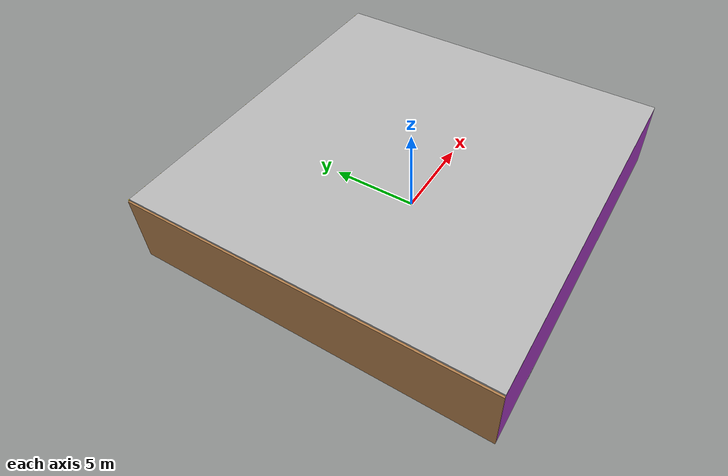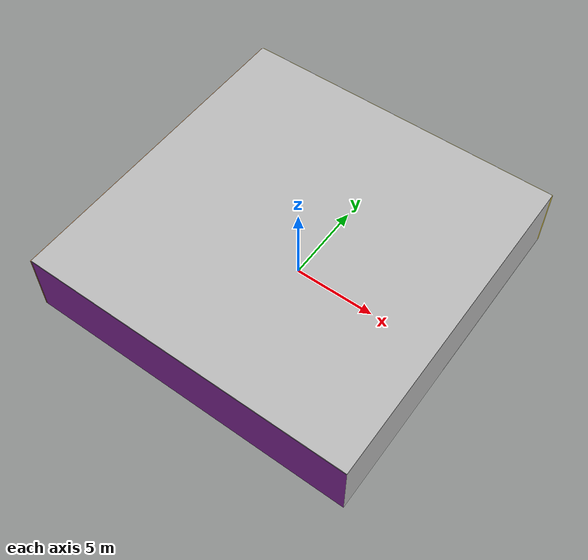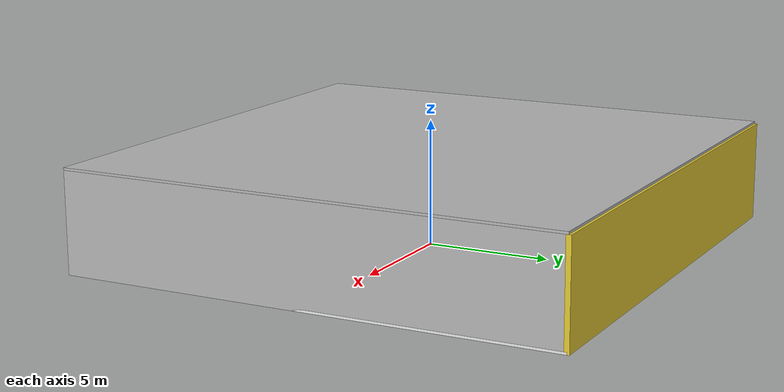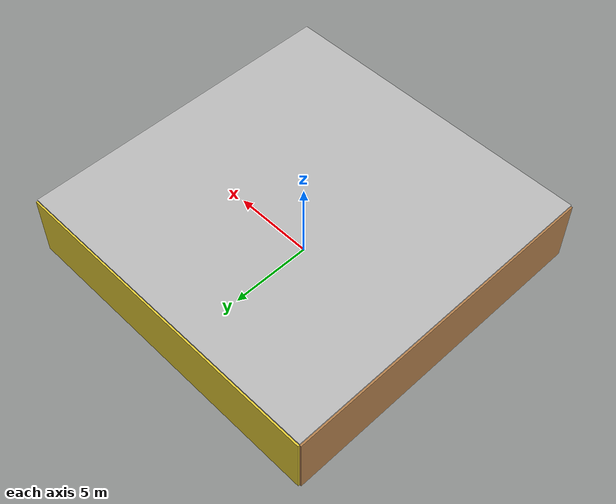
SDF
<sdf version="1.4">
 <world name="default">
  <physics type="ode">
   <max_step_size>0.001</max_step_size>
   <real_time_factor>1</real_time_factor>
   <real_time_update_rate>1000</real_time_update_rate>
   <gravity>0 0 -9.8</gravity>
  </physics>
  <scene><ambient>0.4 0.4 0.4 1</ambient><background>0.7 0.7 0.7 1</background><shadows>1</shadows></scene>
  <model name="Surrounding">
   <static>1</static>
   <link name="Ceiling">
    <collision name="Ceiling_Collision"><geometry><box><size>20 20 0.1</size></box></geometry></collision>
    <visual name="Ceiling_Visual">
     <geometry><box><size>20 20 0.1</size></box></geometry>
     <material>
      <script><uri>file://media/materials/scripts/gazebo.material</uri><name>Gazebo/Pioneer2Body</name></script>
     </material>
    </visual>
    <pose>0 0 4.05 0 0 0</pose>
   </link>
   <link name="Wall_South">
    <collision name="Wall_South_Collision">
     <geometry><box><size>20 0 4</size></box></geometry>
     <pose>0 0 2 0 -0 0</pose>
    </collision>
    <visual name="Wall_South_Visual">
     <pose>0 0 2 0 -0 0</pose>
     <geometry><box><size>20 0 4</size></box></geometry>
     <material>
      <script><uri>file://media/materials/scripts/gazebo.material</uri><name>Gazebo/Purple</name></script>
     </material>
    </visual>
    <velocity_decay><linear>0</linear><angular>0</angular></velocity_decay>
    <pose>0 -10 0 0 -0 0</pose>
   </link>
   <link name="Wall_East">
    <collision name="Wall_21_Collision">
     <geometry><box><size>20 0 4</size></box></geometry>
     <pose>0 0 2 0 -0 0</pose>
    </collision>
    <visual name="Wall_21_Visual">
     <pose>0 0 2 0 -0 0</pose>
     <geometry><box><size>20 0 4</size></box></geometry>
     <material>
      <script><uri>file://media/materials/scripts/gazebo.material</uri><name>Gazebo/PioneerBody</name></script>
     </material>
    </visual>
    <velocity_decay><linear>0</linear><angular>0</angular></velocity_decay>
    <pose>10 0 0 0 -0 1.5708</pose>
   </link>
   <link name="Wall_North">
    <collision name="Wall_22_Collision">
     <geometry><box><size>20 0.2 4</size></box></geometry>
     <pose>0 0 2 0 -0 0</pose>
    </collision>
    <visual name="Wall_22_Visual">
     <pose>0 0 2 0 -0 0</pose>
     <geometry><box><size>20 0.2 4</size></box></geometry>
     <material>
      <script><uri>file://media/materials/scripts/gazebo.material</uri><name>Gazebo/ZincYellow</name></script>
     </material>
    </visual>
    <velocity_decay><linear>0</linear><angular>0</angular></velocity_decay>
    <pose>0 10 0 0 -0 0</pose>
   </link>
   <link name="Wall_West">
    <collision name="Wall_23_Collision">
     <geometry><box><size>20 0.2 4</size></box></geometry>
     <pose>0 0 2 0 -0 0</pose>
    </collision>
    <visual name="Wall_23_Visual">
     <pose>0 0 2 0 -0 0</pose>
     <geometry><box><size>20 0.2 4</size></box></geometry>
     <material>
      <script><uri>file://media/materials/scripts/gazebo.material</uri><name>Gazebo/Wood</name></script>
     </material>
    </visual>
    <velocity_decay><linear>0</linear><angular>0</angular></velocity_decay>
    <pose>-10 0 0 0 0 -1.5708</pose>
   </link>
   <link name="Ground_link">
    <collision name="collision">
     <pose>0 0 .05 0 -0 0</pose>
     <geometry><box><size>20 20 0.1</size></box></geometry>
    </collision>
    <visual name="visual">
     <pose>0 0 .05 0 -0 0</pose>
     <geometry><box><size>20 20 0.1</size></box></geometry>
     <material>
      <script><uri>file://media/materials/scripts/gazebo.material</uri><name>Gazebo/WhiteGlow</name></script>
     </material>
    </visual>
   </link>
   <static>1</static>
  </model>
  <spherical_coordinates>
   <surface_model>EARTH_WGS84</surface_model>
   <latitude_deg>0</latitude_deg>
   <longitude_deg>0</longitude_deg>
   <elevation>0</elevation>
   <heading_deg>0</heading_deg>
  </spherical_coordinates>
  <light name="lightball_0" type="diffuse">
   <diffuse>0.8 0.8 0.8 1</diffuse>
   <specular>0.2 0.2 0.2 1</specular>
   <attenuation>
    <range>100</range>
    <constant>0.7</constant>
    <linear>0.01</linear>
    <quadratic>0.001</quadratic>
   </attenuation>
   <direction>-0.5 0.1 -0.9</direction>
   <pose>3.22458528569 -7.98584075087 3.2861071878 0 0 0</pose>
  </light>
  <light name="lightball_1" type="diffuse">
   <diffuse>0.8 0.8 0.8 1</diffuse>
   <specular>0.2 0.2 0.2 1</specular>
   <attenuation>
    <range>100</range>
    <constant>0.7</constant>
    <linear>0.01</linear>
    <quadratic>0.001</quadratic>
   </attenuation>
   <direction>-0.5 0.1 -0.9</direction>
   <pose>5.38126229309 -4.54196473744 0.882481976107 0 0 0</pose>
  </light>
  <light name="lightball_2" type="diffuse">
   <diffuse>0.8 0.8 0.8 1</diffuse>
   <specular>0.2 0.2 0.2 1</specular>
   <attenuation>
    <range>100</range>
    <constant>0.7</constant>
    <linear>0.01</linear>
    <quadratic>0.001</quadratic>
   </attenuation>
   <direction>-0.5 0.1 -0.9</direction>
   <pose>-0.271906311523 -3.14155742434 1.18280464888 0 0 0</pose>
  </light>
  <light name="lightball_3" type="diffuse">
   <diffuse>0.8 0.8 0.8 1</diffuse>
   <specular>0.2 0.2 0.2 1</specular>
   <attenuation>
    <range>100</range>
    <constant>0.7</constant>
    <linear>0.01</linear>
    <quadratic>0.001</quadratic>
   </attenuation>
   <direction>-0.5 0.1 -0.9</direction>
   <pose>-8.33420631931 -8.51920836303 0.982747817657 0 0 0</pose>
  </light>
  <light name="lightball_4" type="diffuse">
   <diffuse>0.8 0.8 0.8 1</diffuse>
   <specular>0.2 0.2 0.2 1</specular>
   <attenuation>
    <range>100</range>
    <constant>0.7</constant>
    <linear>0.01</linear>
    <quadratic>0.001</quadratic>
   </attenuation>
   <direction>-0.5 0.1 -0.9</direction>
   <pose>4.35502892506 6.87094183151 2.61020565892 0 0 0</pose>
  </light>
  <light name="lightball_5" type="diffuse">
   <diffuse>0.8 0.8 0.8 1</diffuse>
   <specular>0.2 0.2 0.2 1</specular>
   <attenuation>
    <range>100</range>
    <constant>0.7</constant>
    <linear>0.01</linear>
    <quadratic>0.001</quadratic>
   </attenuation>
   <direction>-0.5 0.1 -0.9</direction>
   <pose>-7.31970722972 5.75827343796 1.51626753435 0 0 0</pose>
  </light>
  <light name="lightball_6" type="diffuse">
   <diffuse>0.8 0.8 0.8 1</diffuse>
   <specular>0.2 0.2 0.2 1</specular>
   <attenuation>
    <range>100</range>
    <constant>0.7</constant>
    <linear>0.01</linear>
    <quadratic>0.001</quadratic>
   </attenuation>
   <direction>-0.5 0.1 -0.9</direction>
   <pose>9.42459454957 -3.57650648562 0.831728411327 0 0 0</pose>
  </light>
  <light name="lightball_7" type="diffuse">
   <diffuse>0.8 0.8 0.8 1</diffuse>
   <specular>0.2 0.2 0.2 1</specular>
   <attenuation>
    <range>100</range>
    <constant>0.7</constant>
    <linear>0.01</linear>
    <quadratic>0.001</quadratic>
   </attenuation>
   <direction>-0.5 0.1 -0.9</direction>
   <pose>-5.56998094001 8.31523178401 0.685217260856 0 0 0</pose>
  </light>
  <light name="lightball_8" type="diffuse">
   <diffuse>0.8 0.8 0.8 1</diffuse>
   <specular>0.2 0.2 0.2 1</specular>
   <attenuation>
    <range>100</range>
    <constant>0.7</constant>
    <linear>0.01</linear>
    <quadratic>0.001</quadratic>
   </attenuation>
   <direction>-0.5 0.1 -0.9</direction>
   <pose>1.59540016725 -9.97750011844 3.01887507177 0 0 0</pose>
  </light>
  <light name="lightball_9" type="diffuse">
   <diffuse>0.8 0.8 0.8 1</diffuse>
   <specular>0.2 0.2 0.2 1</specular>
   <attenuation>
    <range>100</range>
    <constant>0.7</constant>
    <linear>0.01</linear>
    <quadratic>0.001</quadratic>
   </attenuation>
   <direction>-0.5 0.1 -0.9</direction>
   <pose>-6.61550828236 -6.85816332487 1.42240824113 0 0 0</pose>
  </light>
  <include><uri>model://table</uri><pose>-0.750736885729 -0.908413305268 0 0 0 2.97648036313</pose></include>
  <include><uri>model://cabinet</uri><pose>-1.46650639546 3.76175175566 0 0 0 2.75701266567</pose></include>
  <include>
   <uri>model://construction_cone</uri>
   <pose>1.30166322463 -5.14863004506 0 0 0 1.59100218074</pose>
  </include>
  <include>
   <uri>model://textured_shapes</uri>
   <pose>4.78224830834 1.93676250713 0 0 0 2.37823048666</pose>
  </include>
  <include>
   <uri>model://robocup_3Dsim_goal</uri>
   <pose>6.76772985703 4.09648770265 0 0 0 1.89741736412</pose>
  </include>
 </world>
</sdf>

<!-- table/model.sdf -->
<sdf version="1.5">
  <model name="table">
    <static>true</static>
    <link name="link">
      <collision name="surface">
        <pose>0 0 1.0 0 0 0</pose>
        <geometry>
          <box>
            <size>1.5 0.8 0.03</size>
          </box>
        </geometry>
        <surface>
          <friction>
            <ode>
              <mu>0.6</mu>
              <mu2>0.6</mu2>
            </ode>
          </friction>
        </surface>
      </collision>
      <visual name="visual1">
        <pose>0 0 1.0 0 0 0</pose>
        <geometry>
          <box>
            <size>1.5 0.8 0.03</size>
          </box>
        </geometry>
        <material>
          <script>
            <uri>model://media/materials/scripts/gazebo.material</uri>
            <name>Gazebo/Wood</name>
          </script>
        </material>
      </visual>
      <collision name="front_left_leg">
        <pose>0.68 0.38 0.5 0 0 0</pose>
        <geometry>
          <cylinder>
            <radius>0.02</radius>
            <length>1.0</length>
          </cylinder>
        </geometry>
      </collision>
      <visual name="front_left_leg">
        <pose>0.68 0.38 0.5 0 0 0</pose>
        <geometry>
          <cylinder>
            <radius>0.02</radius>
            <length>1.0</length>
          </cylinder>
        </geometry>
        <material>
          <script>
            <uri>model://media/materials/scripts/gazebo.material</uri>
            <name>Gazebo/Grey</name>
          </script>
        </material>
      </visual>
      <collision name="front_right_leg">
        <pose>0.68 -0.38 0.5 0 0 0</pose>
        <geometry>
          <cylinder>
            <radius>0.02</radius>
            <length>1.0</length>
          </cylinder>
        </geometry>
      </collision>
      <visual name="front_right_leg">
        <pose>0.68 -0.38 0.5 0 0 0</pose>
        <geometry>
          <cylinder>
            <radius>0.02</radius>
            <length>1.0</length>
          </cylinder>
        </geometry>
        <material>
          <script>
            <uri>model://media/materials/scripts/gazebo.material</uri>
            <name>Gazebo/Grey</name>
          </script>
        </material>
      </visual>
      <collision name="back_right_leg">
        <pose>-0.68 -0.38 0.5 0 0 0</pose>
        <geometry>
          <cylinder>
            <radius>0.02</radius>
            <length>1.0</length>
          </cylinder>
        </geometry>
      </collision>
      <visual name="back_right_leg">
        <pose>-0.68 -0.38 0.5 0 0 0</pose>
        <geometry>
          <cylinder>
            <radius>0.02</radius>
            <length>1.0</length>
          </cylinder>
        </geometry>
        <material>
          <script>
            <uri>model://media/materials/scripts/gazebo.material</uri>
            <name>Gazebo/Grey</name>
          </script>
        </material>
      </visual>
      <collision name="back_left_leg">
        <pose>-0.68 0.38 0.5 0 0 0</pose>
        <geometry>
          <cylinder>
            <radius>0.02</radius>
            <length>1.0</length>
          </cylinder>
        </geometry>
      </collision>
      <visual name="back_left_leg">
        <pose>-0.68 0.38 0.5 0 0 0</pose>
        <geometry>
          <cylinder>
            <radius>0.02</radius>
            <length>1.0</length>
          </cylinder>
        </geometry>
        <material>
          <script>
            <uri>model://media/materials/scripts/gazebo.material</uri>
            <name>Gazebo/Grey</name>
          </script>
        </material>
      </visual>
    </link>
  </model>
</sdf>

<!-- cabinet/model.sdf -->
<sdf version="1.5">
  <model name="cabinet">
    <static>true</static>
    <link name="cabinet_bottom_plate">
      <inertial>
        <pose>0 0 -1 0 0 0</pose>
        <inertia>
          <ixx>2.050000</ixx>
          <ixy>0</ixy>
          <ixz>0</ixz>
          <iyy>2.050000</iyy>
          <iyz>0</iyz>
          <izz>2.050000</izz>
        </inertia>
        <mass>25.000000</mass>
      </inertial>
      <collision name="cabinet_bottom_plate_geom">
        <pose>0 0 0.010000 0 0 0</pose>
        <geometry>
          <box>
            <size>0.450000 0.450000 0.020000</size>
          </box>
        </geometry>
      </collision>
      <visual name="cabinet_bottom_plate_geom_visual">
        <pose>0 0 0.010000 0 0 0</pose>
        <geometry>
          <box>
            <size>0.450000 0.450000 0.020000</size>
          </box>
        </geometry>
        <material>
          <script>
            <uri>model://media/materials/scripts/gazebo.material</uri>
            <name>Gazebo/Wood</name>
          </script>
        </material>
      </visual>
      <collision name="cabinet_bottom_plate_geom_cabinet_back_plate">
        <pose>0.235000 0 0.510000 0 0 0</pose>
        <geometry>
          <box>
            <size>0.020000 0.450000 1.020000</size>
          </box>
        </geometry>
      </collision>
      <visual name="cabinet_bottom_plate_geom_cabinet_back_plate_visual">
        <pose>0.235000 0 0.510000 0 0 0</pose>
        <geometry>
          <box>
            <size>0.020000 0.450000 1.020000</size>
          </box>
        </geometry>
        <material>
          <script>
            <uri>model://media/materials/scripts/gazebo.material</uri>
            <name>Gazebo/Wood</name>
          </script>
        </material>
      </visual>
      <collision name="cabinet_bottom_plate_geom_cabinet_left_plate">
        <pose>0 0.235000 0.510000 0 0 0</pose>
        <geometry>
          <box>
            <size>0.450000 0.020000 1.020000</size>
          </box>
        </geometry>
      </collision>
      <visual name="cabinet_bottom_plate_geom_cabinet_left_plate_visual">
        <pose>0 0.235000 0.510000 0 0 0</pose>
        <geometry>
          <box>
            <size>0.450000 0.020000 1.020000</size>
          </box>
        </geometry>
        <material>
          <script>
            <uri>model://media/materials/scripts/gazebo.material</uri>
            <name>Gazebo/Wood</name>
          </script>
        </material>
      </visual>
      <collision name="cabinet_bottom_plate_geom_cabinet_middle_plate">
        <pose>0 0 0.510000 0 0 0</pose>
        <geometry>
          <box>
            <size>0.450000 0.450000 0.020000</size>
          </box>
        </geometry>
      </collision>
      <visual name="cabinet_bottom_plate_geom_cabinet_middle_plate_visual">
        <pose>0 0 0.510000 0 0 0</pose>
        <geometry>
          <box>
            <size>0.450000 0.450000 0.020000</size>
          </box>
        </geometry>
        <material>
          <script>
            <uri>model://media/materials/scripts/gazebo.material</uri>
            <name>Gazebo/Wood</name>
          </script>
        </material>
      </visual>
      <collision name="cabinet_bottom_plate_geom_cabinet_right_plate">
        <pose>0 -0.235000 0.510000 0 0 0</pose>
        <geometry>
          <box>
            <size>0.450000 0.020000 1.020000</size>
          </box>
        </geometry>
      </collision>
      <visual name="cabinet_bottom_plate_geom_cabinet_right_plate_visual">
        <pose>0 -0.235000 0.510000 0 0 0</pose>
        <geometry>
          <box>
            <size>0.450000 0.020000 1.020000</size>
          </box>
        </geometry>
        <material>
          <script>
            <uri>model://media/materials/scripts/gazebo.material</uri>
            <name>Gazebo/Wood</name>
          </script>
        </material>
      </visual>
      <collision name="cabinet_bottom_plate_geom_cabinet_top_plate">
        <pose>0 0 1.010000 0 0 0</pose>
        <geometry>
          <box>
            <size>0.450000 0.450000 0.020000</size>
          </box>
        </geometry>
      </collision>
      <visual name="cabinet_bottom_plate_geom_cabinet_top_plate_visual">
        <pose>0 0 1.010000 0 0 0</pose>
        <geometry>
          <box>
            <size>0.450000 0.450000 0.020000</size>
          </box>
        </geometry>
        <material>
          <script>
            <uri>model://media/materials/scripts/gazebo.material</uri>
            <name>Gazebo/Wood</name>
          </script>
        </material>
      </visual>
    </link>
  </model>
</sdf>

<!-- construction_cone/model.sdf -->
<sdf version="1.5">
  <model name="Construction Cone">
    <link name="link">
      <collision name="collision">
        <geometry>
          <mesh>
            <scale>10 10 10</scale>
            <uri>file://isr-testbed/construction_cone/meshes/construction_cone.dae</uri>
          </mesh>
        </geometry>
      </collision>
      <visual name="visual">
        <geometry>
          <mesh>
            <scale>10 10 10</scale>
            <uri>file://isr-testbed/construction_cone/meshes/construction_cone.dae</uri>
          </mesh>
        </geometry>
      </visual>
    </link>
  </model>
</sdf>

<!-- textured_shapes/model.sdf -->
<sdf version="1.6">
  <model name="textured_shapes">
    <pose>0 0 0.5 0 0 0</pose>
    <link name="box">
      <pose>0 -1.5 0 0 0 0</pose>
      <collision name="collision">
        <geometry>
          <box>
            <size>1 1 1</size>
          </box>
        </geometry>
      </collision>
      <visual name="visual">
        <geometry>
          <box>
            <size>1 1 1</size>
          </box>
        </geometry>
        <material>
          <script>
            <uri>model://../model_source/models/textured_shapes/materials/scripts</uri>
            <uri>model://../model_source/models/textured_shapes/materials/textures</uri>
            <name>TexturedShape/Squares</name>
          </script>
        </material>
      </visual>
    </link>
    <link name="sphere">
      <collision name="collision">
        <geometry>
          <sphere>
            <radius>0.5</radius>
          </sphere>
        </geometry>
      </collision>
      <visual name="visual">
        <geometry>
          <sphere>
            <radius>0.5</radius>
          </sphere>
        </geometry>
        <material>
          <script>
            <uri>model://../model_source/models/textured_shapes/materials/scripts</uri>
            <uri>model://../model_source/models/textured_shapes/materials/textures</uri>
            <name>TexturedShape/Squares</name>
          </script>
        </material>
      </visual>
    </link>
    <link name="cylinder">
      <pose>0 1.5 0 0 0 0</pose>
      <collision name="collision">
        <geometry>
          <cylinder>
            <radius>0.5</radius>
            <length>1</length>
          </cylinder>
        </geometry>
      </collision>
      <visual name="visual">
        <geometry>
          <cylinder>
            <radius>0.5</radius>
            <length>1</length>
          </cylinder>
        </geometry>
        <material>
          <script>
            <uri>model://../model_source/models/textured_shapes/materials/scripts</uri>
            <uri>model://../model_source/models/textured_shapes/materials/textures</uri>
            <name>TexturedShape/Squares</name>
          </script>
        </material>
      </visual>
    </link>
  </model>
</sdf>

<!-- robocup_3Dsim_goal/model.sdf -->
<sdf version="1.5">
  <model name="robocup_3d_goal">
    <static>true</static>
    <link name="left_post">
      <pose>0 1.05 0.45 0 0 0</pose>
      <collision name="collision">
        <geometry>
          <cylinder>
            <radius>0.05</radius>
            <length>0.9</length>
          </cylinder>
        </geometry>
      </collision>
      <visual name="visual">
        <geometry>
          <cylinder>
            <radius>0.05</radius>
            <length>0.9</length>
          </cylinder>
        </geometry>
        <material>
          <script>
            <uri>file://media/materials/scripts/gazebo.material</uri>
            <name>Gazebo/ZincYellow</name>
          </script>
        </material>
      </visual>
    </link>
    <link name="left_support_horiz_lower">
      <pose>0.30 1.05 0.01 0 0 0</pose>
      <collision name="collision">
        <geometry>
          <box>
            <size>0.50 0.02 0.02</size>
          </box>
        </geometry>
      </collision>
      <visual name="visual">
        <geometry>
          <box>
            <size>0.50 0.02 0.02</size>
          </box>
        </geometry>
        <material>
          <script>
            <uri>file://media/materials/scripts/gazebo.material</uri>
            <name>Gazebo/White</name>
          </script>
        </material>
      </visual>
    </link>
    <link name="left_support_horiz_upper">
      <pose>0.30 1.05 0.79 0 0 0</pose>
      <collision name="collision">
        <geometry>
          <box>
            <size>0.50 0.02 0.02</size>
          </box>
        </geometry>
      </collision>
      <visual name="visual">
        <geometry>
          <box>
            <size>0.50 0.02 0.02</size>
          </box>
        </geometry>
        <material>
          <script>
            <uri>file://media/materials/scripts/gazebo.material</uri>
            <name>Gazebo/White</name>
          </script>
        </material>
      </visual>
    </link>
    <link name="left_support_vertical">
      <pose>0.56 1.05 0.4 0 1.5708 0</pose>
      <collision name="collision">
        <geometry>
          <box>
            <size>0.80 0.02 0.02</size>
          </box>
        </geometry>
      </collision>
      <visual name="visual">
        <geometry>
          <box>
            <size>0.80 0.02 0.02</size>
          </box>
        </geometry>
        <material>
          <script>
            <uri>file://media/materials/scripts/gazebo.material</uri>
            <name>Gazebo/White</name>
          </script>
        </material>
      </visual>
    </link>
    <link name="right_support_horiz_lower">
      <pose>0.30 -1.05 0.01 0 0 0</pose>
      <collision name="collision">
        <geometry>
          <box>
            <size>0.50 0.02 0.02</size>
          </box>
        </geometry>
      </collision>
      <visual name="visual">
        <geometry>
          <box>
            <size>0.50 0.02 0.02</size>
          </box>
        </geometry>
        <material>
          <script>
            <uri>file://media/materials/scripts/gazebo.material</uri>
            <name>Gazebo/White</name>
          </script>
        </material>
      </visual>
    </link>
    <link name="right_support_horiz_upper">
      <pose>0.30 -1.05 0.79 0 0 0</pose>
      <collision name="collision">
        <geometry>
          <box>
            <size>0.50 0.02 0.02</size>
          </box>
        </geometry>
      </collision>
      <visual name="visual">
        <geometry>
          <box>
            <size>0.50 0.02 0.02</size>
          </box>
        </geometry>
        <material>
          <script>
            <uri>file://media/materials/scripts/gazebo.material</uri>
            <name>Gazebo/White</name>
          </script>
        </material>
      </visual>
    </link>
    <link name="right_support_vertical">
      <pose>0.56 -1.05 0.4 0 1.5708 0</pose>
      <collision name="collision">
        <geometry>
          <box>
            <size>0.80 0.02 0.02</size>
          </box>
        </geometry>
      </collision>
      <visual name="visual">
        <geometry>
          <box>
            <size>0.80 0.02 0.02</size>
          </box>
        </geometry>
        <material>
          <script>
            <uri>file://media/materials/scripts/gazebo.material</uri>
            <name>Gazebo/White</name>
          </script>
        </material>
      </visual>
    </link>
    <link name="center_support_horiz_lower">
      <pose>0.56 0 0.01 0 1.5708 0</pose>
      <collision name="collision">
        <geometry>
          <box>
            <size>0.02 2.08 0.02</size>
          </box>
        </geometry>
      </collision>
      <visual name="visual">
        <geometry>
          <box>
            <size>0.02 2.08 0.02</size>
          </box>
        </geometry>
        <material>
          <script>
            <uri>file://media/materials/scripts/gazebo.material</uri>
            <name>Gazebo/White</name>
          </script>
        </material>
      </visual>
    </link>
    <link name="center_support_horiz_upper">
      <pose>0.56 0 0.79 0 1.5708 0</pose>
      <collision name="collision">
        <geometry>
          <box>
            <size>0.02 2.08 0.02</size>
          </box>
        </geometry>
      </collision>
      <visual name="visual">
        <geometry>
          <box>
            <size>0.02 2.08 0.02</size>
          </box>
        </geometry>
        <material>
          <script>
            <uri>file://media/materials/scripts/gazebo.material</uri>
            <name>Gazebo/White</name>
          </script>
        </material>
      </visual>
    </link>
    <link name="right_post">
      <pose>0 -1.05 0.45 0 0 0</pose>
      <collision name="collision">
        <geometry>
          <cylinder>
            <radius>0.05</radius>
            <length>0.9</length>
          </cylinder>
        </geometry>
      </collision>
      <visual name="visual">
        <geometry>
          <cylinder>
            <radius>0.05</radius>
            <length>0.9</length>
          </cylinder>
        </geometry>
        <material>
          <script>
            <uri>file://media/materials/scripts/gazebo.material</uri>
            <name>Gazebo/ZincYellow</name>
          </script>
        </material>
      </visual>
    </link>
    <link name="crossbar">
      <pose>0 0 0.85 1.57 1.57 0</pose>
      <collision name="collision">
        <geometry>
          <cylinder>
            <radius>0.05</radius>
            <length>2.0</length>
          </cylinder>
        </geometry>
      </collision>
      <visual name="visual">
        <geometry>
          <cylinder>
            <radius>0.05</radius>
            <length>2.0</length>
          </cylinder>
        </geometry>
        <material>
          <script>
            <uri>file://media/materials/scripts/gazebo.material</uri>
            <name>Gazebo/ZincYellow</name>
          </script>
        </material>
      </visual>
    </link>
    <link name="center_net">
      <pose>0.56 0 0.40 0 0 0</pose>
      <collision name="collision">
        <geometry>
          <box>
            <size>0.01 2.1 0.80</size>
          </box>
        </geometry>
      </collision>
      <visual name="visual">
        <geometry>
          <box>
            <size>0.01 2.1 0.80</size>
          </box>
        </geometry>
        <material>
          <script>
            <uri>model://../model_source/models/robocup09_spl_field/materials/scripts/</uri>
            <uri>model://../model_source/models/robocup09_spl_field/materials/textures/</uri>
            <name>RoboCup/Net</name>
          </script>
        </material>
      </visual>
    </link>
    <link name="left_net">
      <pose>0.30 1.05 0.40 0 0 0</pose>
      <collision name="collision">
        <geometry>
          <box>
            <size>0.50 0.01 0.76</size>
          </box>
        </geometry>
      </collision>
      <visual name="visual">
        <geometry>
          <box>
            <size>0.50 0.01 0.76</size>
          </box>
        </geometry>
        <material>
          <script>
            <uri>model://../model_source/models/robocup09_spl_field/materials/scripts/</uri>
            <uri>model://../model_source/models/robocup09_spl_field/materials/textures/</uri>
            <name>RoboCup/Net</name>
          </script>
        </material>
      </visual>
    </link>
    <link name="right_net">
      <pose>0.30 -1.05 0.40 0 0 0</pose>
      <collision name="collision">
        <geometry>
          <box>
            <size>0.50 0.01 0.76</size>
          </box>
        </geometry>
      </collision>
      <visual name="visual">
        <geometry>
          <box>
            <size>0.50 0.01 0.76</size>
          </box>
        </geometry>
        <material>
          <script>
            <uri>model://../model_source/models/robocup09_spl_field/materials/scripts/</uri>
            <uri>model://../model_source/models/robocup09_spl_field/materials/textures/</uri>
            <name>RoboCup/Net</name>
          </script>
        </material>
      </visual>
    </link>
  </model>
</sdf>
